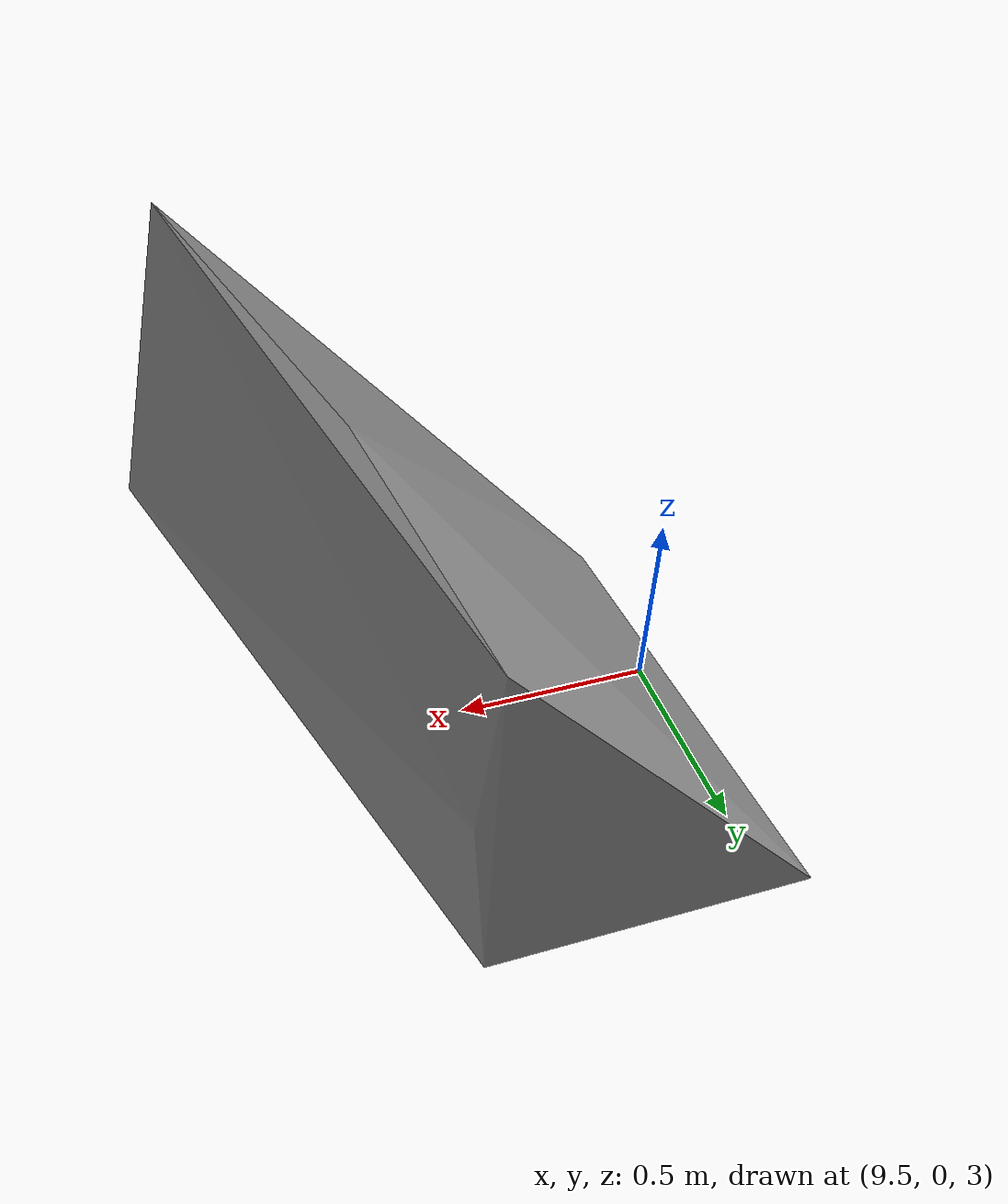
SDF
<sdf version="1.8">
 <model name="blue_mountains">
  <static>true</static>
  <link name="forest_21_20">
   <collision name="tree_12_trunk">
    <pose>10.61743 0.05945006 1.032972 0 0 0.3981147</pose>
    <geometry><cylinder><radius>0.062728</radius><length>3.869562</length></cylinder></geometry>
   </collision>
   <collision name="plant_12_crown_0">
    <pose>10.5943 0.04972267 -0.9018087 0 0 0.3981147</pose>
    <geometry>
     <mesh><uri>model://blue_mountains/meshes/canopy_5_0.dae</uri><scale>0.250912 0.250912 0.2908539</scale></mesh>
    </geometry>
   </collision>
   <collision name="plant_12_crown_1">
    <pose>10.5943 0.04972267 -0.9018087 0 0 0.3981147</pose>
    <geometry>
     <mesh><uri>model://blue_mountains/meshes/canopy_5_1.dae</uri><scale>0.250912 0.250912 0.2908539</scale></mesh>
    </geometry>
   </collision>
   <collision name="tree_34_trunk">
    <pose>14.35518 7.446737 1.112412 0 0 2.305227</pose>
    <geometry><cylinder><radius>0.0406336</radius><length>2.434428</length></cylinder></geometry>
   </collision>
   <collision name="plant_34_crown_0">
    <pose>14.36608 7.434673 -0.1048019 0 0 2.305227</pose>
    <geometry>
     <mesh>
      <uri>model://blue_mountains/meshes/canopy_2_0.dae</uri>
      <scale>0.1625344 0.1625344 0.179114</scale>
     </mesh>
    </geometry>
   </collision>
   <collision name="plant_34_crown_1">
    <pose>14.36608 7.434673 -0.1048019 0 0 2.305227</pose>
    <geometry>
     <mesh>
      <uri>model://blue_mountains/meshes/canopy_2_1.dae</uri>
      <scale>0.1625344 0.1625344 0.179114</scale>
     </mesh>
    </geometry>
   </collision>
   <collision name="tree_87_trunk">
    <pose>10.92101 9.66016 2.591596 0 0 -1.208526</pose>
    <geometry><cylinder><radius>0.07021421</radius><length>4.424511</length></cylinder></geometry>
   </collision>
   <collision name="plant_87_crown_0">
    <pose>10.91105 9.686422 0.3793411 0 0 -1.208526</pose>
    <geometry>
     <mesh>
      <uri>model://blue_mountains/meshes/canopy_6_0.dae</uri>
      <scale>0.2808568 0.2808568 0.3261403</scale>
     </mesh>
    </geometry>
   </collision>
   <collision name="plant_87_crown_1">
    <pose>10.91105 9.686422 0.3793411 0 0 -1.208526</pose>
    <geometry>
     <mesh>
      <uri>model://blue_mountains/meshes/canopy_6_1.dae</uri>
      <scale>0.2808568 0.2808568 0.3261403</scale>
     </mesh>
    </geometry>
   </collision>
   <collision name="tree_91_trunk">
    <pose>10.25135 4.911596 1.025896 0 0 -0.5432718</pose>
    <geometry><cylinder><radius>0.04570034</radius><length>2.810564</length></cylinder></geometry>
   </collision>
   <collision name="plant_91_crown_0">
    <pose>10.2357 4.921045 -0.3793862 0 0 -0.5432718</pose>
    <geometry>
     <mesh>
      <uri>model://blue_mountains/meshes/canopy_6_0.dae</uri>
      <scale>0.1828014 0.1828014 0.2071728</scale>
     </mesh>
    </geometry>
   </collision>
   <collision name="plant_91_crown_1">
    <pose>10.2357 4.921045 -0.3793862 0 0 -0.5432718</pose>
    <geometry>
     <mesh>
      <uri>model://blue_mountains/meshes/canopy_6_1.dae</uri>
      <scale>0.1828014 0.1828014 0.2071728</scale>
     </mesh>
    </geometry>
   </collision>
   <collision name="tree_153_trunk">
    <pose>10.76844 8.073482 1.16416 0 0 -0.7424048</pose>
    <geometry><cylinder><radius>0.0379728</radius><length>2.186297</length></cylinder></geometry>
   </collision>
   <collision name="plant_153_crown_0">
    <pose>10.75725 8.083751 0.07101154 0 0 -0.7424048</pose>
    <geometry>
     <mesh>
      <uri>model://blue_mountains/meshes/canopy_1_0.dae</uri>
      <scale>0.1518912 0.1518912 0.1614817</scale>
     </mesh>
    </geometry>
   </collision>
   <collision name="plant_153_crown_1">
    <pose>10.75725 8.083751 0.07101154 0 0 -0.7424048</pose>
    <geometry>
     <mesh>
      <uri>model://blue_mountains/meshes/canopy_1_1.dae</uri>
      <scale>0.1518912 0.1518912 0.1614817</scale>
     </mesh>
    </geometry>
   </collision>
   <collision name="tree_172_trunk">
    <pose>18.51188 7.57442 1.585182 0 0 2.966067</pose>
    <geometry><cylinder><radius>0.06040874</radius><length>3.816188</length></cylinder></geometry>
   </collision>
   <collision name="plant_172_crown_0">
    <pose>18.53567 7.5702 -0.3229122 0 0 2.966067</pose>
    <geometry>
     <mesh><uri>model://blue_mountains/meshes/canopy_0_0.dae</uri><scale>0.241635 0.241635 0.2814417</scale></mesh>
    </geometry>
   </collision>
   <collision name="plant_172_crown_1">
    <pose>18.53567 7.5702 -0.3229122 0 0 2.966067</pose>
    <geometry>
     <mesh><uri>model://blue_mountains/meshes/canopy_0_1.dae</uri><scale>0.241635 0.241635 0.2814417</scale></mesh>
    </geometry>
   </collision>
   <collision name="tree_203_trunk">
    <pose>10.30068 1.722782 0.688685 0 0 2.891472</pose>
    <geometry><cylinder><radius>0.04939657</radius><length>2.735794</length></cylinder></geometry>
   </collision>
   <collision name="plant_203_crown_0">
    <pose>10.31982 1.717892 -0.6792119 0 0 2.891472</pose>
    <geometry>
     <mesh>
      <uri>model://blue_mountains/meshes/canopy_0_0.dae</uri>
      <scale>0.1975863 0.1975863 0.2017632</scale>
     </mesh>
    </geometry>
   </collision>
   <collision name="plant_203_crown_1">
    <pose>10.31982 1.717892 -0.6792119 0 0 2.891472</pose>
    <geometry>
     <mesh>
      <uri>model://blue_mountains/meshes/canopy_0_1.dae</uri>
      <scale>0.1975863 0.1975863 0.2017632</scale>
     </mesh>
    </geometry>
   </collision>
   <collision name="tree_293_trunk">
    <pose>16.40939 8.42736 1.486802 0 0 -0.8058627</pose>
    <geometry><cylinder><radius>0.04797912</radius><length>2.990079</length></cylinder></geometry>
   </collision>
   <collision name="plant_293_crown_0">
    <pose>16.3961 8.441205 -0.008237123 0 0 -0.8058627</pose>
    <geometry>
     <mesh>
      <uri>model://blue_mountains/meshes/canopy_8_0.dae</uri>
      <scale>0.1919165 0.1919165 0.2224887</scale>
     </mesh>
    </geometry>
   </collision>
   <collision name="plant_293_crown_1">
    <pose>16.3961 8.441205 -0.008237123 0 0 -0.8058627</pose>
    <geometry>
     <mesh>
      <uri>model://blue_mountains/meshes/canopy_8_1.dae</uri>
      <scale>0.1919165 0.1919165 0.2224887</scale>
     </mesh>
    </geometry>
   </collision>
   <collision name="tree_312_trunk">
    <pose>14.20963 0.715957 -0.2486644 0 0 -1.102457</pose>
    <geometry><cylinder><radius>0.04750823</radius><length>2.914266</length></cylinder></geometry>
   </collision>
   <collision name="plant_312_crown_0">
    <pose>14.20105 0.732914 -1.705797 0 0 -1.102457</pose>
    <geometry>
     <mesh>
      <uri>model://blue_mountains/meshes/canopy_8_0.dae</uri>
      <scale>0.1900329 0.1900329 0.2168475</scale>
     </mesh>
    </geometry>
   </collision>
   <collision name="plant_312_crown_1">
    <pose>14.20105 0.732914 -1.705797 0 0 -1.102457</pose>
    <geometry>
     <mesh>
      <uri>model://blue_mountains/meshes/canopy_8_1.dae</uri>
      <scale>0.1900329 0.1900329 0.2168475</scale>
     </mesh>
    </geometry>
   </collision>
   <collision name="tree_328_trunk">
    <pose>14.20461 3.562832 0.2365199 0 0 2.720894</pose>
    <geometry><cylinder><radius>0.03934818</radius><length>1.90123</length></cylinder></geometry>
   </collision>
   <collision name="plant_328_crown_0">
    <pose>14.21898 3.556404 -0.7140951 0 0 2.720894</pose>
    <geometry>
     <mesh>
      <uri>model://blue_mountains/meshes/canopy_8_0.dae</uri>
      <scale>0.1573927 0.1573927 0.1414686</scale>
     </mesh>
    </geometry>
   </collision>
   <collision name="plant_328_crown_1">
    <pose>14.21898 3.556404 -0.7140951 0 0 2.720894</pose>
    <geometry>
     <mesh>
      <uri>model://blue_mountains/meshes/canopy_8_1.dae</uri>
      <scale>0.1573927 0.1573927 0.1414686</scale>
     </mesh>
    </geometry>
   </collision>
   <collision name="tree_436_trunk">
    <pose>15.67839 3.703118 0.9102352 0 0 -1.889483</pose>
    <geometry><cylinder><radius>0.0621111</radius><length>3.791787</length></cylinder></geometry>
   </collision>
   <collision name="plant_436_crown_0">
    <pose>15.68618 3.726711 -0.9856584 0 0 -1.889483</pose>
    <geometry>
     <mesh>
      <uri>model://blue_mountains/meshes/canopy_2_0.dae</uri>
      <scale>0.2484444 0.2484444 0.2789822</scale>
     </mesh>
    </geometry>
   </collision>
   <collision name="plant_436_crown_1">
    <pose>15.68618 3.726711 -0.9856584 0 0 -1.889483</pose>
    <geometry>
     <mesh>
      <uri>model://blue_mountains/meshes/canopy_2_1.dae</uri>
      <scale>0.2484444 0.2484444 0.2789822</scale>
     </mesh>
    </geometry>
   </collision>
   <collision name="tree_449_trunk">
    <pose>10.67785 6.220252 0.9342205 0 0 2.206501</pose>
    <geometry><cylinder><radius>0.04306091</radius><length>2.314262</length></cylinder></geometry>
   </collision>
   <collision name="plant_449_crown_0">
    <pose>10.68807 6.206392 -0.2229104 0 0 2.206501</pose>
    <geometry>
     <mesh>
      <uri>model://blue_mountains/meshes/canopy_3_0.dae</uri>
      <scale>0.1722437 0.1722437 0.1720546</scale>
     </mesh>
    </geometry>
   </collision>
   <collision name="plant_449_crown_1">
    <pose>10.68807 6.206392 -0.2229104 0 0 2.206501</pose>
    <geometry>
     <mesh>
      <uri>model://blue_mountains/meshes/canopy_3_1.dae</uri>
      <scale>0.1722437 0.1722437 0.1720546</scale>
     </mesh>
    </geometry>
   </collision>
   <visual name="forest_visual">
    <geometry><mesh><uri>model://blue_mountains/meshes/forest_21_20.dae</uri></mesh></geometry>
    <cast_shadows>false</cast_shadows>
   </visual>
  </link>
 </model>
</sdf>
